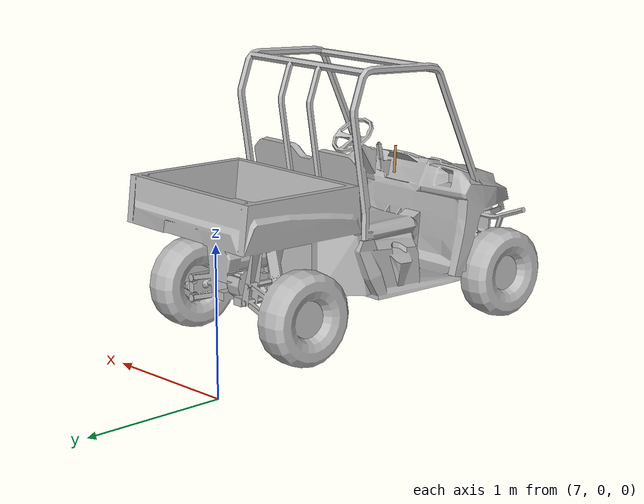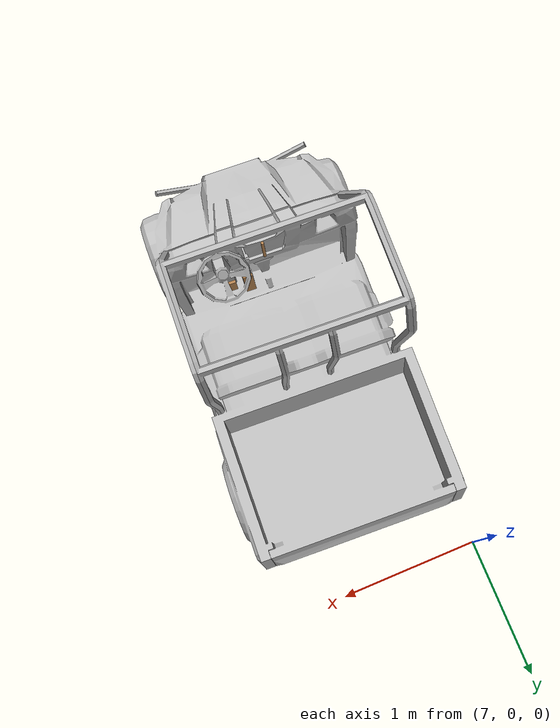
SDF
<sdf version="1.6">
 <world name="default">
  <model name="polaris_ranger_ev_clone_5">
   <static>true</static>
   <link name="chassis">
    <inertial>
     <mass>720</mass>
     <inertia><ixx>140</ixx><ixy>0</ixy><iyy>550</iyy><ixz>0</ixz><iyz>0</iyz><izz>550</izz></inertia>
    </inertial>
    <visual name="visual">
     <pose>0 0 0 0 0 -1.5708</pose>
     <geometry><mesh><uri>model://polaris_ranger_ev/meshes/polaris.dae</uri><scale>1 1 1</scale></mesh></geometry>
     <material>
      <script>
       <uri>model://polaris_ranger_ev/materials/scripts</uri>
       <uri>model://polaris_ranger_ev/materials/textures</uri>
       <name>Polaris/Diffuse</name>
      </script>
     </material>
    </visual>
    <collision name="chassis_bottom">
     <pose>0 0 0.35 0 -0 0</pose>
     <geometry><box><size>2 1 0.1</size></box></geometry>
    </collision>
    <collision name="cargo_bottom">
     <pose>-0.9 0 0.9 0 -0 0</pose>
     <geometry><box><size>0.9 1.2 0.01</size></box></geometry>
    </collision>
    <collision name="cargo_front">
     <pose>-0.45 0 1.025 0 -0 0</pose>
     <geometry><box><size>0.05 1.2 0.25</size></box></geometry>
    </collision>
    <collision name="cargo_back">
     <pose>-1.35 0 1.025 0 -0 0</pose>
     <geometry><box><size>0.05 1.2 0.25</size></box></geometry>
    </collision>
    <collision name="cargo_left">
     <pose>-0.9 0.6 1.025 0 -0 0</pose>
     <geometry><box><size>0.9 0.05 0.25</size></box></geometry>
    </collision>
    <collision name="cargo_right">
     <pose>-0.9 -0.6 1.025 0 -0 0</pose>
     <geometry><box><size>0.9 0.05 0.25</size></box></geometry>
    </collision>
    <collision name="seat">
     <pose>-0.1 0 0.625 0 -0 0</pose>
     <geometry><box><size>0.6 1 0.65</size></box></geometry>
    </collision>
    <collision name="seat_back">
     <pose>-0.3 0 1.125 0 -0.2 0</pose>
     <geometry><box><size>0.1 1 0.4</size></box></geometry>
    </collision>
    <collision name="engine">
     <pose>0.95 0 0.7 0 -0 0</pose>
     <geometry><box><size>0.58 1 0.8</size></box></geometry>
    </collision>
    <collision name="steering_column">
     <pose>0.525 0.3 1.025 0 -0.8 0</pose>
     <geometry><cylinder><radius>0.05</radius><length>0.45</length></cylinder></geometry>
    </collision>
   </link>
   <link name="rear_right_wheel">
    <pose>-0.85 -0.6 0.32 1.5708 -0 0</pose>
    <inertial>
     <mass>12</mass>
     <inertia><ixx>0.5</ixx><ixy>0</ixy><iyy>0.5</iyy><ixz>0</ixz><iyz>0</iyz><izz>1</izz></inertia>
    </inertial>
    <collision name="collision">
     <geometry><cylinder><radius>0.32</radius><length>0.23</length></cylinder></geometry>
     <surface>
      <friction><ode><mu>100000</mu><mu2>100000</mu2><slip1>0</slip1><slip2>0</slip2></ode></friction>
     </surface>
    </collision>
   </link>
   <joint name="rear_right_wheel_joint" type="revolute">
    <pose>0 0 -0.1 0 -0 0</pose>
    <child>rear_right_wheel</child>
    <parent>chassis</parent>
    <axis>
     <xyz>0 1 0</xyz>
     <use_parent_model_frame>1</use_parent_model_frame>
     <limit><lower>-1e+16</lower><upper>1e+16</upper></limit>
     <dynamics><spring_reference>0</spring_reference><spring_stiffness>0</spring_stiffness></dynamics>
    </axis>
    <physics><ode><limit><cfm>0</cfm><erp>0.9</erp></limit></ode></physics>
   </joint>
   <link name="rear_left_wheel">
    <pose>-0.85 0.6 0.32 1.5708 -0 0</pose>
    <inertial>
     <mass>12</mass>
     <inertia><ixx>0.5</ixx><ixy>0</ixy><iyy>0.5</iyy><ixz>0</ixz><iyz>0</iyz><izz>1</izz></inertia>
    </inertial>
    <collision name="collision">
     <geometry><cylinder><radius>0.32</radius><length>0.23</length></cylinder></geometry>
     <surface>
      <friction><ode><mu>100000</mu><mu2>100000</mu2><slip1>0</slip1><slip2>0</slip2></ode></friction>
     </surface>
    </collision>
   </link>
   <joint name="rear_left_wheel_joint" type="revolute">
    <child>rear_left_wheel</child>
    <parent>chassis</parent>
    <axis>
     <xyz>0 1 0</xyz>
     <use_parent_model_frame>1</use_parent_model_frame>
     <limit><lower>-1e+16</lower><upper>1e+16</upper></limit>
     <dynamics><spring_reference>0</spring_reference><spring_stiffness>0</spring_stiffness></dynamics>
    </axis>
    <physics><ode><limit><cfm>0</cfm><erp>0.9</erp></limit></ode></physics>
   </joint>
   <link name="front_right_wheel">
    <pose>1.03 -0.6 0.32 1.5708 -0 0</pose>
    <inertial>
     <mass>12</mass>
     <inertia><ixx>0.5</ixx><ixy>0</ixy><iyy>0.5</iyy><ixz>0</ixz><iyz>0</iyz><izz>1</izz></inertia>
    </inertial>
    <collision name="collision">
     <geometry><cylinder><radius>0.32</radius><length>0.23</length></cylinder></geometry>
     <surface>
      <friction><ode><mu>100000</mu><mu2>100000</mu2><slip1>0</slip1><slip2>0</slip2></ode></friction>
     </surface>
    </collision>
   </link>
   <link name="front_right_wheel_steering_block">
    <pose>1.03 -0.5 0.32 1.5708 -0 0</pose>
    <inertial>
     <mass>1</mass>
     <inertia><ixx>1</ixx><ixy>0</ixy><iyy>1</iyy><ixz>0</ixz><iyz>0</iyz><izz>1</izz></inertia>
    </inertial>
    <collision name="collision">
     <geometry><cylinder><radius>0.05</radius><length>0.01</length></cylinder></geometry>
    </collision>
   </link>
   <joint name="front_right_steering_joint" type="revolute">
    <child>front_right_wheel_steering_block</child>
    <parent>chassis</parent>
    <axis>
     <xyz>0 0 1</xyz>
     <limit><lower>-1</lower><upper>1</upper></limit>
     <use_parent_model_frame>1</use_parent_model_frame>
     <dynamics><spring_reference>0</spring_reference><spring_stiffness>0</spring_stiffness></dynamics>
    </axis>
    <physics><ode><limit><cfm>0</cfm><erp>0.9</erp></limit></ode></physics>
   </joint>
   <joint name="front_right_wheel_joint" type="revolute">
    <child>front_right_wheel</child>
    <parent>front_right_wheel_steering_block</parent>
    <axis>
     <xyz>0 1 0</xyz>
     <use_parent_model_frame>1</use_parent_model_frame>
     <limit><lower>-1e+16</lower><upper>1e+16</upper></limit>
     <dynamics><spring_reference>0</spring_reference><spring_stiffness>0</spring_stiffness></dynamics>
    </axis>
    <physics><ode><limit><cfm>0</cfm><erp>0.9</erp></limit></ode></physics>
   </joint>
   <link name="front_left_wheel">
    <pose>1.03 0.6 0.32 1.5708 -0 0</pose>
    <inertial>
     <mass>12</mass>
     <inertia><ixx>0.5</ixx><ixy>0</ixy><iyy>0.5</iyy><ixz>0</ixz><iyz>0</iyz><izz>1</izz></inertia>
    </inertial>
    <collision name="collision">
     <geometry><cylinder><radius>0.32</radius><length>0.23</length></cylinder></geometry>
     <surface>
      <friction><ode><mu>100000</mu><mu2>100000</mu2><slip1>0</slip1><slip2>0</slip2></ode></friction>
     </surface>
    </collision>
   </link>
   <link name="front_left_wheel_steering_block">
    <pose>1.03 0.5 0.32 1.5708 -0 0</pose>
    <inertial>
     <mass>1</mass>
     <inertia><ixx>1</ixx><ixy>0</ixy><iyy>1</iyy><ixz>0</ixz><iyz>0</iyz><izz>1</izz></inertia>
    </inertial>
    <collision name="collision">
     <geometry><cylinder><radius>0.05</radius><length>0.01</length></cylinder></geometry>
    </collision>
   </link>
   <joint name="front_left_steering_joint" type="revolute">
    <child>front_left_wheel_steering_block</child>
    <parent>chassis</parent>
    <axis>
     <xyz>0 0 1</xyz>
     <limit><lower>-1</lower><upper>1</upper></limit>
     <use_parent_model_frame>1</use_parent_model_frame>
     <dynamics><spring_reference>0</spring_reference><spring_stiffness>0</spring_stiffness></dynamics>
    </axis>
    <physics><ode><limit><cfm>0</cfm><erp>0.9</erp></limit></ode></physics>
   </joint>
   <joint name="front_left_wheel_joint" type="revolute">
    <child>front_left_wheel</child>
    <parent>front_left_wheel_steering_block</parent>
    <axis>
     <xyz>0 1 0</xyz>
     <use_parent_model_frame>1</use_parent_model_frame>
     <limit><lower>-1e+16</lower><upper>1e+16</upper></limit>
     <dynamics><spring_reference>0</spring_reference><spring_stiffness>0</spring_stiffness></dynamics>
    </axis>
    <physics><ode><limit><cfm>0</cfm><erp>0.9</erp></limit></ode></physics>
   </joint>
   <link name="gas_pedal">
    <pose>0.53 0.14 0.56 0 -1 0</pose>
    <gravity>0</gravity>
    <inertial>
     <mass>0.1</mass>
     <inertia><ixx>0.01</ixx><ixy>0</ixy><ixz>0</ixz><iyy>0.01</iyy><iyz>0</iyz><izz>0.01</izz></inertia>
    </inertial>
    <collision name="gas_pedal_collision"><geometry><box><size>0.12 0.07 0.03</size></box></geometry></collision>
    <visual name="gas_pedal_visual">
     <geometry><box><size>0.12 0.07 0.03</size></box></geometry>
     <material>
      <script><uri>file://media/materials/scripts/gazebo.material</uri><name>Gazebo/Wood</name></script>
      <ambient>0.2 0.2 0.2 1</ambient>
      <diffuse>0.2 0.2 0.2 1</diffuse>
      <specular>0.2 0.2 0.2 1</specular>
      <emissive>0.5 0.5 0.5 1</emissive>
     </material>
    </visual>
   </link>
   <link name="brake_pedal">
    <gravity>0</gravity>
    <pose>0.54 0.27 0.58 0 -1 0</pose>
    <inertial>
     <mass>0.1</mass>
     <inertia><ixx>0.01</ixx><ixy>0</ixy><ixz>0</ixz><iyy>0.01</iyy><iyz>0</iyz><izz>0.01</izz></inertia>
    </inertial>
    <collision name="brake_pedal_collision">
     <geometry><box><size>0.06 0.08 0.03</size></box></geometry>
    </collision>
    <visual name="brake_pedal_visual">
     <geometry><box><size>0.06 0.08 0.03</size></box></geometry>
     <material>
      <script><uri>file://media/materials/scripts/gazebo.material</uri><name>Gazebo/Wood</name></script>
      <ambient>0.2 0.2 0.2 1</ambient>
      <diffuse>0.2 0.2 0.2 1</diffuse>
      <specular>0.2 0.2 0.2 1</specular>
      <emissive>0.5 0.5 0.5 1</emissive>
     </material>
    </visual>
   </link>
   <link name="steering_wheel">
    <pose>0.37 0.3 1.2 0 -0.8 0</pose>
    <inertial>
     <mass>1</mass>
     <inertia><ixx>0.1</ixx><ixy>0</ixy><ixz>0</ixz><iyy>0.1</iyy><iyz>0</iyz><izz>1</izz></inertia>
    </inertial>
    <collision name="steering_wheel_post_left">
     <pose>0 0.08 0 1.5708 -0 0</pose>
     <geometry><cylinder><radius>0.02</radius><length>0.15</length></cylinder></geometry>
    </collision>
    <collision name="steering_wheel_post_right">
     <pose>0 -0.08 0 1.5708 -0 0</pose>
     <geometry><cylinder><radius>0.02</radius><length>0.15</length></cylinder></geometry>
    </collision>
    <collision name="steering_wheel_post_middle">
     <pose>-0.08 0 0 3.14159 1.57079 3.14159</pose>
     <geometry><cylinder><radius>0.02</radius><length>0.15</length></cylinder></geometry>
    </collision>
    <collision name="collision00">
     <pose>0.15 0 0 3.14159 1.57079 -1.57079</pose>
     <geometry><cylinder><length>0.105066</length><radius>0.01</radius></cylinder></geometry>
    </collision>
    <collision name="collision01">
     <pose>0.121353 0.088168 0 3.14159 1.57079 -0.942483</pose>
     <geometry><cylinder><length>0.105066</length><radius>0.01</radius></cylinder></geometry>
    </collision>
    <collision name="collision02">
     <pose>0.046353 0.142658 0 3.14159 1.57079 -0.314163</pose>
     <geometry><cylinder><length>0.105066</length><radius>0.01</radius></cylinder></geometry>
    </collision>
    <collision name="collision03">
     <pose>-0.046353 0.142658 0 3.14159 1.57079 0.314163</pose>
     <geometry><cylinder><length>0.105066</length><radius>0.01</radius></cylinder></geometry>
    </collision>
    <collision name="collision04">
     <pose>-0.121353 0.088168 0 -3.14159 1.57079 0.942483</pose>
     <geometry><cylinder><length>0.105066</length><radius>0.01</radius></cylinder></geometry>
    </collision>
    <collision name="collision05">
     <pose>-0.15 0 0 -3.14159 1.57079 1.57079</pose>
     <geometry><cylinder><length>0.105066</length><radius>0.01</radius></cylinder></geometry>
    </collision>
    <collision name="collision06">
     <pose>-0.121353 -0.088168 0 3.14159 1.57079 2.19912</pose>
     <geometry><cylinder><length>0.105066</length><radius>0.01</radius></cylinder></geometry>
    </collision>
    <collision name="collision07">
     <pose>-0.046353 -0.142658 0 -3.14159 1.57079 2.82743</pose>
     <geometry><cylinder><length>0.105066</length><radius>0.01</radius></cylinder></geometry>
    </collision>
    <collision name="collision08">
     <pose>0.046353 -0.142658 0 3.14159 1.57079 -2.82743</pose>
     <geometry><cylinder><length>0.105066</length><radius>0.01</radius></cylinder></geometry>
    </collision>
    <collision name="collision09">
     <pose>0.121353 -0.088168 0 -3.14159 1.57079 -2.19911</pose>
     <geometry><cylinder><length>0.105066</length><radius>0.01</radius></cylinder></geometry>
    </collision>
   </link>
   <link name="hand_brake">
    <pose>0.5 0 1.05 3.14159 -0.058407 3.14159</pose>
    <inertial>
     <mass>1</mass>
     <pose>0 0 -0.15 0 -0 0</pose>
     <inertia><ixx>0.1</ixx><ixy>0</ixy><ixz>0</ixz><iyy>0.1</iyy><iyz>0</iyz><izz>1</izz></inertia>
    </inertial>
    <collision name="hand_brake_collision">
     <pose>0 0 -0.1 0 -0 0</pose>
     <geometry><cylinder><radius>0.01</radius><length>0.2</length></cylinder></geometry>
    </collision>
    <visual name="hand_brake_visual">
     <pose>0 0 -0.1 0 -0 0</pose>
     <geometry><cylinder><radius>0.01</radius><length>0.2</length></cylinder></geometry>
     <material>
      <script><uri>file://media/materials/scripts/gazebo.material</uri><name>Gazebo/Wood</name></script>
     </material>
    </visual>
   </link>
   <joint name="gas_joint" type="prismatic">
    <parent>chassis</parent>
    <child>gas_pedal</child>
    <axis>
     <xyz>1 0 -1</xyz>
     <limit><lower>0</lower><upper>0.15</upper></limit>
     <use_parent_model_frame>1</use_parent_model_frame>
     <dynamics><spring_reference>0</spring_reference><spring_stiffness>0</spring_stiffness></dynamics>
    </axis>
   </joint>
   <joint name="brake_joint" type="prismatic">
    <parent>chassis</parent>
    <child>brake_pedal</child>
    <axis>
     <xyz>1 0 -0.6</xyz>
     <limit><lower>0</lower><upper>0.15</upper></limit>
     <use_parent_model_frame>1</use_parent_model_frame>
     <dynamics><spring_reference>0</spring_reference><spring_stiffness>0</spring_stiffness></dynamics>
    </axis>
   </joint>
   <joint name="steering_joint" type="revolute">
    <pose>0 0 0 1.5708 -0.8 0</pose>
    <parent>chassis</parent>
    <child>steering_wheel</child>
    <axis>
     <xyz>-1 0 1.023</xyz>
     <limit><lower>-7.853</lower><upper>7.853</upper></limit>
     <use_parent_model_frame>1</use_parent_model_frame>
     <dynamics><spring_reference>0</spring_reference><spring_stiffness>0</spring_stiffness></dynamics>
    </axis>
   </joint>
   <joint name="hand_brake_joint" type="revolute">
    <parent>chassis</parent>
    <child>hand_brake</child>
    <axis>
     <xyz>0 -1 0</xyz>
     <limit><lower>0</lower><upper>0.6</upper></limit>
     <use_parent_model_frame>1</use_parent_model_frame>
     <dynamics><spring_reference>0</spring_reference><spring_stiffness>0</spring_stiffness></dynamics>
    </axis>
   </joint>
   <pose>7.6692 -1.72792 -4.9e-05 -7e-06 5e-05 -1.62323</pose>
  </model>
 </world>
</sdf>
